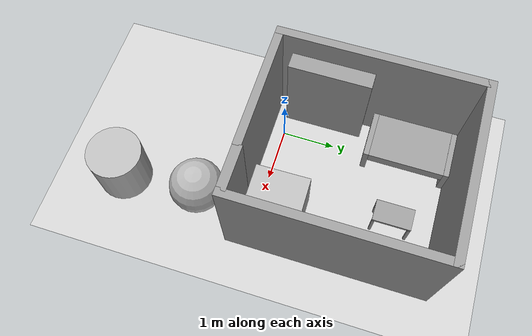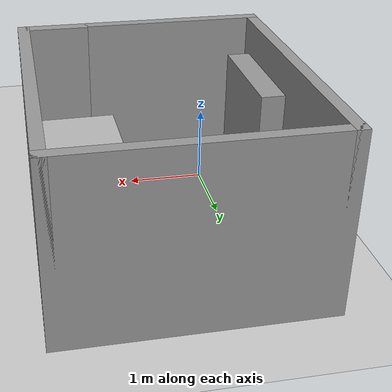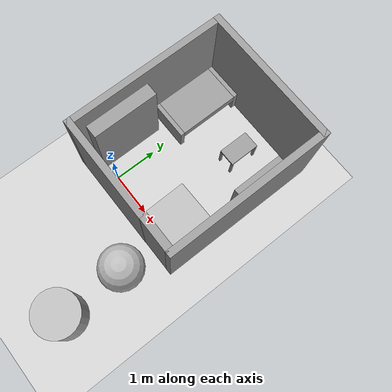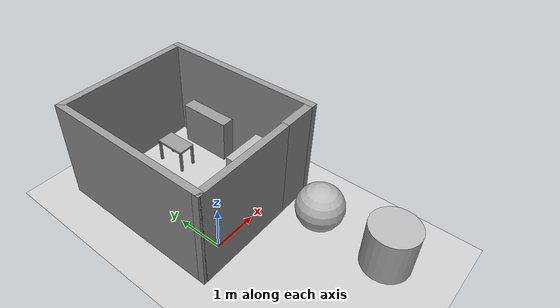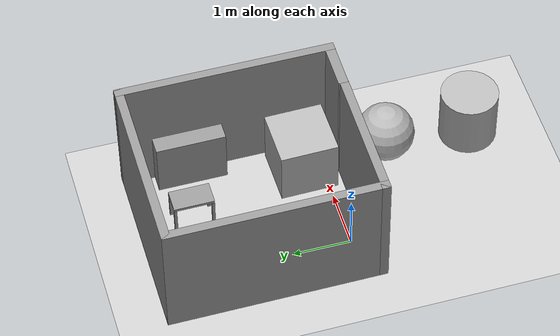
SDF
<sdf version="1.6">
 <world name="default">
  <scene><ambient>0.4 0.4 0.4 1</ambient><background>0.7 0.7 0.7 1</background><shadows>1</shadows></scene>
  <light name="sun" type="directional">
   <pose>0 0 10 0 -0 0</pose>
   <diffuse>0.8 0.8 0.8 1</diffuse>
   <specular>0.1 0.1 0.1 1</specular>
   <attenuation>
    <range>1000</range>
    <constant>0.9</constant>
    <linear>0.01</linear>
    <quadratic>0.001</quadratic>
   </attenuation>
   <direction>-0.5 0.5 -1</direction>
  </light>
  <model name="ground_plane">
   <static>1</static>
   <link name="link">
    <collision name="collision">
     <geometry><plane><normal>0 0 1</normal><size>100 100</size></plane></geometry>
     <surface><friction><ode><mu>100</mu><mu2>50</mu2></ode></friction></surface>
    </collision>
    <visual name="visual">
     <cast_shadows>0</cast_shadows>
     <geometry><plane><normal>0 0 1</normal><size>100 100</size></plane></geometry>
     <material>
      <script><uri>file://media/materials/scripts/gazebo.material</uri><name>Gazebo/Grey</name></script>
     </material>
    </visual>
   </link>
  </model>
  <physics name="default_physics" default="0" type="ode">
   <real_time_update_rate>1000</real_time_update_rate>
   <max_step_size>0.001</max_step_size>
   <real_time_factor>1</real_time_factor>
   <ode>
    <solver>
     <type>quick</type>
     <iters>150</iters>
     <precon_iters>0</precon_iters>
     <sor>1.4</sor>
     <use_dynamic_moi_rescaling>1</use_dynamic_moi_rescaling>
    </solver>
    <constraints>
     <cfm>1e-05</cfm>
     <erp>0.2</erp>
     <contact_max_correcting_vel>2000</contact_max_correcting_vel>
     <contact_surface_layer>0.01</contact_surface_layer>
    </constraints>
   </ode>
  </physics>
  <gravity>0 0 -9.8</gravity>
  <magnetic_field>6e-06 2.3e-05 -4.2e-05</magnetic_field>
  <atmosphere type="adiabatic"/>
  <spherical_coordinates>
   <surface_model>EARTH_WGS84</surface_model>
   <latitude_deg>0</latitude_deg>
   <longitude_deg>0</longitude_deg>
   <elevation>0</elevation>
   <heading_deg>0</heading_deg>
  </spherical_coordinates>
  <model name="bedroom_0">
   <pose>0.80187 1.47809 0 0 -0 0</pose>
   <link name="Door_1">
    <collision name="Door_1_Collision">
     <geometry><box><size>0.8 0.17 2.25</size></box></geometry>
     <pose>0 0 1.125 0 -0 0</pose>
    </collision>
    <visual name="Door_1_Visual">
     <pose>0 0 1.125 0 -0 0</pose>
     <geometry><box><size>0.8 0.17 2.25</size></box></geometry>
     <material>
      <script><uri>file://media/materials/scripts/gazebo.material</uri><name>Gazebo/Grey</name></script>
     </material>
    </visual>
    <pose>1.10897 -1.78722 0 0 -0 3.13854</pose>
   </link>
   <link name="Wall_17">
    <collision name="Wall_17_Collision">
     <geometry><box><size>3.234 0.15 2.25</size></box></geometry>
     <pose>0 0 1.125 0 -0 0</pose>
    </collision>
    <visual name="Wall_17_Visual">
     <pose>0 0 1.125 0 -0 0</pose>
     <geometry><box><size>3.234 0.15 2.25</size></box></geometry>
     <material>
      <script><uri>file://media/materials/scripts/gazebo.material</uri><name>Gazebo/Grey</name></script>
      <ambient>1 1 1 1</ambient>
     </material>
    </visual>
    <pose>0 1.8 0 0 -0 0</pose>
   </link>
   <link name="Wall_18">
    <collision name="Wall_18_Collision">
     <geometry><box><size>3.75 0.15 2.25</size></box></geometry>
     <pose>0 0 1.125 0 -0 0</pose>
    </collision>
    <visual name="Wall_18_Visual">
     <pose>0 0 1.125 0 -0 0</pose>
     <geometry><box><size>3.75 0.15 2.25</size></box></geometry>
     <material>
      <script><uri>file://media/materials/scripts/gazebo.material</uri><name>Gazebo/Grey</name></script>
      <ambient>1 1 1 1</ambient>
     </material>
    </visual>
    <pose>1.542 0 0 0 0 -1.5708</pose>
   </link>
   <link name="Wall_20">
    <collision name="Wall_20_Collision">
     <geometry><box><size>3.75 0.15 2.25</size></box></geometry>
     <pose>0 0 1.125 0 -0 0</pose>
    </collision>
    <visual name="Wall_20_Visual">
     <pose>0 0 1.125 0 -0 0</pose>
     <geometry><box><size>3.75 0.15 2.25</size></box></geometry>
     <material>
      <script><uri>file://media/materials/scripts/gazebo.material</uri><name>Gazebo/Grey</name></script>
      <ambient>1 1 1 1</ambient>
     </material>
    </visual>
    <pose>-1.542 0 0 0 -0 1.5708</pose>
   </link>
   <link name="Wall_22">
    <collision name="Wall_22_Collision">
     <geometry><box><size>2.35 0.15 2.25</size></box></geometry>
     <pose>0 0 1.125 0 -0 0</pose>
    </collision>
    <visual name="Wall_22_Visual">
     <pose>0 0 1.125 0 -0 0</pose>
     <geometry><box><size>2.35 0.15 2.25</size></box></geometry>
     <material>
      <script><uri>file://media/materials/scripts/gazebo.material</uri><name>Gazebo/Grey</name></script>
      <ambient>1 1 1 1</ambient>
     </material>
    </visual>
    <pose>-0.442 -1.8 0 0 -0 0</pose>
   </link>
   <static>1</static>
  </model>
  <model name="wardrobe">
   <link name="link">
    <pose>0.459939 -4.32407 1 0 -0 0</pose>
    <inertial>
     <mass>1</mass>
     <inertia>
      <ixx>0.166667</ixx>
      <ixy>0</ixy>
      <ixz>0</ixz>
      <iyy>0.166667</iyy>
      <iyz>0</iyz>
      <izz>0.166667</izz>
     </inertia>
    </inertial>
    <visual name="visual">
     <geometry><box><size>0.3 1.5 1.8</size></box></geometry>
     <material>
      <script><name>Gazebo/Grey</name><uri>file://media/materials/scripts/gazebo.material</uri></script>
      <ambient>0.3 0.3 0.3 1</ambient>
      <diffuse>0.7 0.7 0.7 1</diffuse>
      <specular>0.01 0.01 0.01 1</specular>
      <emissive>0 0 0 1</emissive>
      <shader type="vertex"><normal_map>__default__</normal_map></shader>
     </material>
    </visual>
    <collision name="collision">
     <geometry><box><size>0.3 1.5 1.8</size></box></geometry>
     <surface>
      <friction>
       <ode><mu>1</mu><mu2>1</mu2><fdir1>0 0 0</fdir1><slip1>0</slip1><slip2>0</slip2></ode>
       <torsional>
        <coefficient>1</coefficient>
        <patch_radius>0</patch_radius>
        <surface_radius>0</surface_radius>
        <use_patch_radius>1</use_patch_radius>
        <ode><slip>0</slip></ode>
       </torsional>
      </friction>
      <bounce><restitution_coefficient>0</restitution_coefficient><threshold>1e+06</threshold></bounce>
      <contact>
       <collide_without_contact>0</collide_without_contact>
       <collide_without_contact_bitmask>1</collide_without_contact_bitmask>
       <collide_bitmask>1</collide_bitmask>
       <ode>
        <soft_cfm>0</soft_cfm>
        <soft_erp>0.2</soft_erp>
        <kp>1e+13</kp>
        <kd>1</kd>
        <max_vel>0.01</max_vel>
        <min_depth>0</min_depth>
       </ode>
       <bullet>
        <split_impulse>1</split_impulse>
        <split_impulse_penetration_threshold>-0.01</split_impulse_penetration_threshold>
        <soft_cfm>0</soft_cfm>
        <soft_erp>0.2</soft_erp>
        <kp>1e+13</kp>
        <kd>1</kd>
       </bullet>
      </contact>
     </surface>
    </collision>
   </link>
   <static>1</static>
   <pose>-0.977293 5.00835 -0.098838 0 -0 0</pose>
  </model>
  <model name="mini_wardrobe">
   <link name="link">
    <inertial>
     <mass>1</mass>
     <inertia>
      <ixx>0.166667</ixx>
      <ixy>0</ixy>
      <ixz>0</ixz>
      <iyy>0.166667</iyy>
      <iyz>0</iyz>
      <izz>0.166667</izz>
     </inertia>
    </inertial>
    <visual name="visual">
     <geometry><box><size>0.3 1.2 1</size></box></geometry>
     <material>
      <script><name>Gazebo/Grey</name><uri>file://media/materials/scripts/gazebo.material</uri></script>
      <ambient>0.3 0.3 0.3 1</ambient>
      <diffuse>0.7 0.7 0.7 1</diffuse>
      <specular>0.01 0.01 0.01 1</specular>
      <emissive>0 0 0 1</emissive>
      <shader type="vertex"><normal_map>__default__</normal_map></shader>
     </material>
    </visual>
    <collision name="collision">
     <geometry><box><size>0.3 1.2 1</size></box></geometry>
     <surface>
      <friction>
       <ode><mu>1</mu><mu2>1</mu2><fdir1>0 0 0</fdir1><slip1>0</slip1><slip2>0</slip2></ode>
       <torsional>
        <coefficient>1</coefficient>
        <patch_radius>0</patch_radius>
        <surface_radius>0</surface_radius>
        <use_patch_radius>1</use_patch_radius>
        <ode><slip>0</slip></ode>
       </torsional>
      </friction>
      <bounce><restitution_coefficient>0</restitution_coefficient><threshold>1e+06</threshold></bounce>
      <contact>
       <collide_without_contact>0</collide_without_contact>
       <collide_without_contact_bitmask>1</collide_without_contact_bitmask>
       <collide_bitmask>1</collide_bitmask>
       <ode>
        <soft_cfm>0</soft_cfm>
        <soft_erp>0.2</soft_erp>
        <kp>1e+13</kp>
        <kd>1</kd>
        <max_vel>0.01</max_vel>
        <min_depth>0</min_depth>
       </ode>
       <bullet>
        <split_impulse>1</split_impulse>
        <split_impulse_penetration_threshold>-0.01</split_impulse_penetration_threshold>
        <soft_cfm>0</soft_cfm>
        <soft_erp>0.2</soft_erp>
        <kp>1e+13</kp>
        <kd>1</kd>
       </bullet>
      </contact>
     </surface>
    </collision>
   </link>
   <static>1</static>
   <pose>2.11999 2.20132 0.501685 0 -0 0</pose>
  </model>
  <model name="childrens_table">
   <link name="link_4">
    <pose>-0.173165 -0.324664 -0.054925 0 -0 0</pose>
    <inertial>
     <mass>1</mass>
     <inertia>
      <ixx>0.166667</ixx>
      <ixy>0</ixy>
      <ixz>0</ixz>
      <iyy>0.166667</iyy>
      <iyz>0</iyz>
      <izz>0.166667</izz>
     </inertia>
    </inertial>
    <visual name="visual">
     <geometry><box><size>0.05 0.05 0.5</size></box></geometry>
     <material>
      <lighting>1</lighting>
      <script><uri>file://media/materials/scripts/gazebo.material</uri><name>Gazebo/Grey</name></script>
      <ambient>0.3 0.3 0.3 1</ambient>
      <diffuse>0.7 0.7 0.7 1</diffuse>
      <specular>0.01 0.01 0.01 1</specular>
      <emissive>0 0 0 1</emissive>
      <shader type="vertex"><normal_map>__default__</normal_map></shader>
     </material>
    </visual>
    <collision name="collision">
     <geometry><box><size>0.05 0.05 0.5</size></box></geometry>
     <surface>
      <friction>
       <ode><mu>1</mu><mu2>1</mu2><fdir1>0 0 0</fdir1><slip1>0</slip1><slip2>0</slip2></ode>
       <torsional>
        <coefficient>1</coefficient>
        <patch_radius>0</patch_radius>
        <surface_radius>0</surface_radius>
        <use_patch_radius>1</use_patch_radius>
        <ode><slip>0</slip></ode>
       </torsional>
      </friction>
      <bounce><restitution_coefficient>0</restitution_coefficient><threshold>1e+06</threshold></bounce>
      <contact>
       <collide_without_contact>0</collide_without_contact>
       <collide_without_contact_bitmask>1</collide_without_contact_bitmask>
       <collide_bitmask>1</collide_bitmask>
       <ode>
        <soft_cfm>0</soft_cfm>
        <soft_erp>0.2</soft_erp>
        <kp>1e+13</kp>
        <kd>1</kd>
        <max_vel>0.01</max_vel>
        <min_depth>0</min_depth>
       </ode>
       <bullet>
        <split_impulse>1</split_impulse>
        <split_impulse_penetration_threshold>-0.01</split_impulse_penetration_threshold>
        <soft_cfm>0</soft_cfm>
        <soft_erp>0.2</soft_erp>
        <kp>1e+13</kp>
        <kd>1</kd>
       </bullet>
      </contact>
     </surface>
    </collision>
   </link>
   <link name="link_4_clone">
    <pose>0.173934 -0.324682 -0.054925 0 -0 0</pose>
    <inertial>
     <mass>1</mass>
     <inertia>
      <ixx>0.166667</ixx>
      <ixy>0</ixy>
      <ixz>0</ixz>
      <iyy>0.166667</iyy>
      <iyz>0</iyz>
      <izz>0.166667</izz>
     </inertia>
    </inertial>
    <visual name="visual">
     <geometry><box><size>0.05 0.05 0.5</size></box></geometry>
     <material>
      <lighting>1</lighting>
      <script><uri>file://media/materials/scripts/gazebo.material</uri><name>Gazebo/Grey</name></script>
      <ambient>0.3 0.3 0.3 1</ambient>
      <diffuse>0.7 0.7 0.7 1</diffuse>
      <specular>0.01 0.01 0.01 1</specular>
      <emissive>0 0 0 1</emissive>
      <shader type="vertex"><normal_map>__default__</normal_map></shader>
     </material>
    </visual>
    <collision name="collision">
     <geometry><box><size>0.05 0.05 0.5</size></box></geometry>
     <surface>
      <friction>
       <ode><mu>1</mu><mu2>1</mu2><fdir1>0 0 0</fdir1><slip1>0</slip1><slip2>0</slip2></ode>
       <torsional>
        <coefficient>1</coefficient>
        <patch_radius>0</patch_radius>
        <surface_radius>0</surface_radius>
        <use_patch_radius>1</use_patch_radius>
        <ode><slip>0</slip></ode>
       </torsional>
      </friction>
      <bounce><restitution_coefficient>0</restitution_coefficient><threshold>1e+06</threshold></bounce>
      <contact>
       <collide_without_contact>0</collide_without_contact>
       <collide_without_contact_bitmask>1</collide_without_contact_bitmask>
       <collide_bitmask>1</collide_bitmask>
       <ode>
        <soft_cfm>0</soft_cfm>
        <soft_erp>0.2</soft_erp>
        <kp>1e+13</kp>
        <kd>1</kd>
        <max_vel>0.01</max_vel>
        <min_depth>0</min_depth>
       </ode>
       <bullet>
        <split_impulse>1</split_impulse>
        <split_impulse_penetration_threshold>-0.01</split_impulse_penetration_threshold>
        <soft_cfm>0</soft_cfm>
        <soft_erp>0.2</soft_erp>
        <kp>1e+13</kp>
        <kd>1</kd>
       </bullet>
      </contact>
     </surface>
    </collision>
   </link>
   <link name="link_4_clone_0">
    <pose>0.174748 0.324455 -0.054925 0 -0 0</pose>
    <inertial>
     <mass>1</mass>
     <inertia>
      <ixx>0.166667</ixx>
      <ixy>0</ixy>
      <ixz>0</ixz>
      <iyy>0.166667</iyy>
      <iyz>0</iyz>
      <izz>0.166667</izz>
     </inertia>
    </inertial>
    <visual name="visual">
     <geometry><box><size>0.05 0.05 0.5</size></box></geometry>
     <material>
      <lighting>1</lighting>
      <script><uri>file://media/materials/scripts/gazebo.material</uri><name>Gazebo/Grey</name></script>
      <ambient>0.3 0.3 0.3 1</ambient>
      <diffuse>0.7 0.7 0.7 1</diffuse>
      <specular>0.01 0.01 0.01 1</specular>
      <emissive>0 0 0 1</emissive>
      <shader type="vertex"><normal_map>__default__</normal_map></shader>
     </material>
    </visual>
    <collision name="collision">
     <geometry><box><size>0.05 0.05 0.5</size></box></geometry>
     <surface>
      <friction>
       <ode><mu>1</mu><mu2>1</mu2><fdir1>0 0 0</fdir1><slip1>0</slip1><slip2>0</slip2></ode>
       <torsional>
        <coefficient>1</coefficient>
        <patch_radius>0</patch_radius>
        <surface_radius>0</surface_radius>
        <use_patch_radius>1</use_patch_radius>
        <ode><slip>0</slip></ode>
       </torsional>
      </friction>
      <bounce><restitution_coefficient>0</restitution_coefficient><threshold>1e+06</threshold></bounce>
      <contact>
       <collide_without_contact>0</collide_without_contact>
       <collide_without_contact_bitmask>1</collide_without_contact_bitmask>
       <collide_bitmask>1</collide_bitmask>
       <ode>
        <soft_cfm>0</soft_cfm>
        <soft_erp>0.2</soft_erp>
        <kp>1e+13</kp>
        <kd>1</kd>
        <max_vel>0.01</max_vel>
        <min_depth>0</min_depth>
       </ode>
       <bullet>
        <split_impulse>1</split_impulse>
        <split_impulse_penetration_threshold>-0.01</split_impulse_penetration_threshold>
        <soft_cfm>0</soft_cfm>
        <soft_erp>0.2</soft_erp>
        <kp>1e+13</kp>
        <kd>1</kd>
       </bullet>
      </contact>
     </surface>
    </collision>
   </link>
   <link name="link_4_clone_1">
    <pose>-0.175844 0.325674 -0.054925 0 -0 0</pose>
    <inertial>
     <mass>1</mass>
     <inertia>
      <ixx>0.166667</ixx>
      <ixy>0</ixy>
      <ixz>0</ixz>
      <iyy>0.166667</iyy>
      <iyz>0</iyz>
      <izz>0.166667</izz>
     </inertia>
    </inertial>
    <visual name="visual">
     <geometry><box><size>0.05 0.05 0.5</size></box></geometry>
     <material>
      <lighting>1</lighting>
      <script><uri>file://media/materials/scripts/gazebo.material</uri><name>Gazebo/Grey</name></script>
      <ambient>0.3 0.3 0.3 1</ambient>
      <diffuse>0.7 0.7 0.7 1</diffuse>
      <specular>0.01 0.01 0.01 1</specular>
      <emissive>0 0 0 1</emissive>
      <shader type="vertex"><normal_map>__default__</normal_map></shader>
     </material>
    </visual>
    <collision name="collision">
     <geometry><box><size>0.05 0.05 0.5</size></box></geometry>
     <surface>
      <friction>
       <ode><mu>1</mu><mu2>1</mu2><fdir1>0 0 0</fdir1><slip1>0</slip1><slip2>0</slip2></ode>
       <torsional>
        <coefficient>1</coefficient>
        <patch_radius>0</patch_radius>
        <surface_radius>0</surface_radius>
        <use_patch_radius>1</use_patch_radius>
        <ode><slip>0</slip></ode>
       </torsional>
      </friction>
      <bounce><restitution_coefficient>0</restitution_coefficient><threshold>1e+06</threshold></bounce>
      <contact>
       <collide_without_contact>0</collide_without_contact>
       <collide_without_contact_bitmask>1</collide_without_contact_bitmask>
       <collide_bitmask>1</collide_bitmask>
       <ode>
        <soft_cfm>0</soft_cfm>
        <soft_erp>0.2</soft_erp>
        <kp>1e+13</kp>
        <kd>1</kd>
        <max_vel>0.01</max_vel>
        <min_depth>0</min_depth>
       </ode>
       <bullet>
        <split_impulse>1</split_impulse>
        <split_impulse_penetration_threshold>-0.01</split_impulse_penetration_threshold>
        <soft_cfm>0</soft_cfm>
        <soft_erp>0.2</soft_erp>
        <kp>1e+13</kp>
        <kd>1</kd>
       </bullet>
      </contact>
     </surface>
    </collision>
   </link>
   <link name="link_5">
    <pose>0.000316 0.000143 0.219699 0 -0 0</pose>
    <inertial>
     <mass>1</mass>
     <inertia>
      <ixx>0.166667</ixx>
      <ixy>0</ixy>
      <ixz>0</ixz>
      <iyy>0.166667</iyy>
      <iyz>0</iyz>
      <izz>0.166667</izz>
     </inertia>
    </inertial>
    <visual name="visual">
     <geometry><box><size>0.4 0.7 0.05</size></box></geometry>
     <material>
      <lighting>1</lighting>
      <script><uri>file://media/materials/scripts/gazebo.material</uri><name>Gazebo/Grey</name></script>
      <ambient>0.3 0.3 0.3 1</ambient>
      <diffuse>0.7 0.7 0.7 1</diffuse>
      <specular>0.01 0.01 0.01 1</specular>
      <emissive>0 0 0 1</emissive>
      <shader type="vertex"><normal_map>__default__</normal_map></shader>
     </material>
    </visual>
    <collision name="collision">
     <geometry><box><size>0.4 0.7 0.05</size></box></geometry>
     <surface>
      <friction>
       <ode><mu>1</mu><mu2>1</mu2><fdir1>0 0 0</fdir1><slip1>0</slip1><slip2>0</slip2></ode>
       <torsional>
        <coefficient>1</coefficient>
        <patch_radius>0</patch_radius>
        <surface_radius>0</surface_radius>
        <use_patch_radius>1</use_patch_radius>
        <ode><slip>0</slip></ode>
       </torsional>
      </friction>
      <bounce><restitution_coefficient>0</restitution_coefficient><threshold>1e+06</threshold></bounce>
      <contact>
       <collide_without_contact>0</collide_without_contact>
       <collide_without_contact_bitmask>1</collide_without_contact_bitmask>
       <collide_bitmask>1</collide_bitmask>
       <ode>
        <soft_cfm>0</soft_cfm>
        <soft_erp>0.2</soft_erp>
        <kp>1e+13</kp>
        <kd>1</kd>
        <max_vel>0.01</max_vel>
        <min_depth>0</min_depth>
       </ode>
       <bullet>
        <split_impulse>1</split_impulse>
        <split_impulse_penetration_threshold>-0.01</split_impulse_penetration_threshold>
        <soft_cfm>0</soft_cfm>
        <soft_erp>0.2</soft_erp>
        <kp>1e+13</kp>
        <kd>1</kd>
       </bullet>
      </contact>
     </surface>
    </collision>
   </link>
   <static>1</static>
   <pose>1.24256 2.4044 0.306 0 -0 0</pose>
  </model>
  <model name="bed">
   <link name="link_3">
    <pose>-0.475135 1.77318 0.174145 0 -0 0</pose>
    <inertial>
     <mass>1</mass>
     <inertia>
      <ixx>0.166667</ixx>
      <ixy>0</ixy>
      <ixz>0</ixz>
      <iyy>0.166667</iyy>
      <iyz>0</iyz>
      <izz>0.166667</izz>
     </inertia>
    </inertial>
    <visual name="visual">
     <geometry><box><size>0.9 1.4 0.2</size></box></geometry>
     <material>
      <lighting>1</lighting>
      <script><uri>file://media/materials/scripts/gazebo.material</uri><name>Gazebo/Grey</name></script>
      <ambient>0.3 0.3 0.3 1</ambient>
      <diffuse>0.7 0.7 0.7 1</diffuse>
      <specular>0.01 0.01 0.01 1</specular>
      <emissive>0 0 0 1</emissive>
      <shader type="vertex"><normal_map>__default__</normal_map></shader>
     </material>
    </visual>
    <collision name="collision">
     <geometry><box><size>0.9 1.4 0.2</size></box></geometry>
     <surface>
      <friction>
       <ode><mu>1</mu><mu2>1</mu2><fdir1>0 0 0</fdir1><slip1>0</slip1><slip2>0</slip2></ode>
       <torsional>
        <coefficient>1</coefficient>
        <patch_radius>0</patch_radius>
        <surface_radius>0</surface_radius>
        <use_patch_radius>1</use_patch_radius>
        <ode><slip>0</slip></ode>
       </torsional>
      </friction>
      <bounce><restitution_coefficient>0</restitution_coefficient><threshold>1e+06</threshold></bounce>
      <contact>
       <collide_without_contact>0</collide_without_contact>
       <collide_without_contact_bitmask>1</collide_without_contact_bitmask>
       <collide_bitmask>1</collide_bitmask>
       <ode>
        <soft_cfm>0</soft_cfm>
        <soft_erp>0.2</soft_erp>
        <kp>1e+13</kp>
        <kd>1</kd>
        <max_vel>0.01</max_vel>
        <min_depth>0</min_depth>
       </ode>
       <bullet>
        <split_impulse>1</split_impulse>
        <split_impulse_penetration_threshold>-0.01</split_impulse_penetration_threshold>
        <soft_cfm>0</soft_cfm>
        <soft_erp>0.2</soft_erp>
        <kp>1e+13</kp>
        <kd>1</kd>
       </bullet>
      </contact>
     </surface>
    </collision>
   </link>
   <link name="link_clone">
    <pose>-0.475077 1.0236 0 0 -0 0</pose>
    <inertial>
     <mass>1.0352</mass>
     <inertia>
      <ixx>0.172534</ixx>
      <ixy>0</ixy>
      <ixz>0</ixz>
      <iyy>0.178714</iyy>
      <iyz>0</iyz>
      <izz>0.178714</izz>
     </inertia>
    </inertial>
    <visual name="visual">
     <geometry><box><size>0.9 0.1 0.55</size></box></geometry>
     <material>
      <script><name>Gazebo/Grey</name><uri>file://media/materials/scripts/gazebo.material</uri></script>
      <ambient>0.3 0.3 0.3 1</ambient>
      <diffuse>0.7 0.7 0.7 1</diffuse>
      <specular>0.01 0.01 0.01 1</specular>
      <emissive>0 0 0 1</emissive>
      <shader type="vertex"><normal_map>__default__</normal_map></shader>
     </material>
    </visual>
    <collision name="collision">
     <geometry><box><size>0.9 0.1 0.55</size></box></geometry>
     <surface>
      <friction>
       <ode><mu>1</mu><mu2>1</mu2><fdir1>0 0 0</fdir1><slip1>0</slip1><slip2>0</slip2></ode>
       <torsional>
        <coefficient>1</coefficient>
        <patch_radius>0</patch_radius>
        <surface_radius>0</surface_radius>
        <use_patch_radius>1</use_patch_radius>
        <ode><slip>0</slip></ode>
       </torsional>
      </friction>
      <bounce><restitution_coefficient>0</restitution_coefficient><threshold>1e+06</threshold></bounce>
      <contact>
       <collide_without_contact>0</collide_without_contact>
       <collide_without_contact_bitmask>1</collide_without_contact_bitmask>
       <collide_bitmask>1</collide_bitmask>
       <ode>
        <soft_cfm>0</soft_cfm>
        <soft_erp>0.2</soft_erp>
        <kp>1e+13</kp>
        <kd>1</kd>
        <max_vel>0.01</max_vel>
        <min_depth>0</min_depth>
       </ode>
       <bullet>
        <split_impulse>1</split_impulse>
        <split_impulse_penetration_threshold>-0.01</split_impulse_penetration_threshold>
        <soft_cfm>0</soft_cfm>
        <soft_erp>0.2</soft_erp>
        <kp>1e+13</kp>
        <kd>1</kd>
       </bullet>
      </contact>
     </surface>
    </collision>
   </link>
   <link name="link_clone_clone">
    <pose>-0.475223 2.52343 0 0 -0 0</pose>
    <inertial>
     <mass>1.0352</mass>
     <inertia>
      <ixx>0.172534</ixx>
      <ixy>0</ixy>
      <ixz>0</ixz>
      <iyy>0.178714</iyy>
      <iyz>0</iyz>
      <izz>0.178714</izz>
     </inertia>
    </inertial>
    <visual name="visual">
     <geometry><box><size>0.9 0.1 0.55</size></box></geometry>
     <material>
      <script><name>Gazebo/Grey</name><uri>file://media/materials/scripts/gazebo.material</uri></script>
      <ambient>0.3 0.3 0.3 1</ambient>
      <diffuse>0.7 0.7 0.7 1</diffuse>
      <specular>0.01 0.01 0.01 1</specular>
      <emissive>0 0 0 1</emissive>
      <shader type="vertex"><normal_map>__default__</normal_map></shader>
     </material>
    </visual>
    <collision name="collision">
     <geometry><box><size>0.9 0.1 0.55</size></box></geometry>
     <surface>
      <friction>
       <ode><mu>1</mu><mu2>1</mu2><fdir1>0 0 0</fdir1><slip1>0</slip1><slip2>0</slip2></ode>
       <torsional>
        <coefficient>1</coefficient>
        <patch_radius>0</patch_radius>
        <surface_radius>0</surface_radius>
        <use_patch_radius>1</use_patch_radius>
        <ode><slip>0</slip></ode>
       </torsional>
      </friction>
      <bounce><restitution_coefficient>0</restitution_coefficient><threshold>1e+06</threshold></bounce>
      <contact>
       <collide_without_contact>0</collide_without_contact>
       <collide_without_contact_bitmask>1</collide_without_contact_bitmask>
       <collide_bitmask>1</collide_bitmask>
       <ode>
        <soft_cfm>0</soft_cfm>
        <soft_erp>0.2</soft_erp>
        <kp>1e+13</kp>
        <kd>1</kd>
        <max_vel>0.01</max_vel>
        <min_depth>0</min_depth>
       </ode>
       <bullet>
        <split_impulse>1</split_impulse>
        <split_impulse_penetration_threshold>-0.01</split_impulse_penetration_threshold>
        <soft_cfm>0</soft_cfm>
        <soft_erp>0.2</soft_erp>
        <kp>1e+13</kp>
        <kd>1</kd>
       </bullet>
      </contact>
     </surface>
    </collision>
   </link>
   <joint name="link_3_JOINT_0" type="universal">
    <parent>link_clone</parent>
    <child>link_3</child>
    <axis>
     <xyz>1 0 0</xyz>
     <use_parent_model_frame>0</use_parent_model_frame>
     <limit>
      <lower>-1.79769e+308</lower>
      <upper>1.79769e+308</upper>
      <effort>-1</effort>
      <velocity>-1</velocity>
     </limit>
     <dynamics>
      <spring_reference>0</spring_reference>
      <spring_stiffness>0</spring_stiffness>
      <damping>0</damping>
      <friction>0</friction>
     </dynamics>
    </axis>
    <axis2>
     <xyz>0 1 0</xyz>
     <use_parent_model_frame>0</use_parent_model_frame>
     <dynamics>
      <spring_reference>0</spring_reference>
      <spring_stiffness>0</spring_stiffness>
      <damping>0</damping>
      <friction>0</friction>
     </dynamics>
     <limit>
      <lower>-1.79769e+308</lower>
      <upper>1.79769e+308</upper>
      <effort>-1</effort>
      <velocity>-1</velocity>
     </limit>
    </axis2>
    <physics>
     <ode><limit><cfm>0</cfm><erp>0.2</erp></limit><suspension><cfm>0</cfm><erp>0.2</erp></suspension></ode>
    </physics>
   </joint>
   <joint name="link_3_JOINT_1" type="revolute">
    <parent>link_clone_clone</parent>
    <child>link_3</child>
    <axis>
     <xyz>1 0 0</xyz>
     <use_parent_model_frame>0</use_parent_model_frame>
     <limit>
      <lower>-1.79769e+308</lower>
      <upper>1.79769e+308</upper>
      <effort>-1</effort>
      <velocity>-1</velocity>
     </limit>
     <dynamics>
      <spring_reference>0</spring_reference>
      <spring_stiffness>0</spring_stiffness>
      <damping>0</damping>
      <friction>0</friction>
     </dynamics>
    </axis>
    <physics>
     <ode><limit><cfm>0</cfm><erp>0.2</erp></limit><suspension><cfm>0</cfm><erp>0.2</erp></suspension></ode>
    </physics>
   </joint>
   <static>1</static>
   <pose>0.26254 0.62567 0.276232 0 -0 0</pose>
  </model>
  <model name="textured_shapes">
   <pose>1.73351 -1.14005 0.5 0 0 -3.12749</pose>
   <link name="box">
    <pose>0 -1.5 0 0 -0 0</pose>
    <collision name="collision"><geometry><box><size>1 1 1</size></box></geometry></collision>
    <visual name="visual">
     <geometry><box><size>1 1 1</size></box></geometry>
     <material>
      <script>
       <uri>model://textured_shapes/materials/scripts</uri>
       <uri>model://textured_shapes/materials/textures</uri>
       <name>TexturedShape/Squares</name>
      </script>
     </material>
    </visual>
    <inertial>
     <inertia><ixx>1</ixx><ixy>0</ixy><ixz>0</ixz><iyy>1</iyy><iyz>0</iyz><izz>1</izz></inertia>
     <mass>1</mass>
    </inertial>
   </link>
   <link name="sphere">
    <collision name="collision"><geometry><sphere><radius>0.5</radius></sphere></geometry></collision>
    <visual name="visual">
     <geometry><sphere><radius>0.5</radius></sphere></geometry>
     <material>
      <script>
       <uri>model://textured_shapes/materials/scripts</uri>
       <uri>model://textured_shapes/materials/textures</uri>
       <name>TexturedShape/Squares</name>
      </script>
     </material>
    </visual>
    <inertial>
     <inertia><ixx>1</ixx><ixy>0</ixy><ixz>0</ixz><iyy>1</iyy><iyz>0</iyz><izz>1</izz></inertia>
     <mass>1</mass>
    </inertial>
   </link>
   <link name="cylinder">
    <pose>0 1.5 0 0 -0 0</pose>
    <collision name="collision">
     <geometry><cylinder><radius>0.5</radius><length>1</length></cylinder></geometry>
    </collision>
    <visual name="visual">
     <geometry><cylinder><radius>0.5</radius><length>1</length></cylinder></geometry>
     <material>
      <script>
       <uri>model://textured_shapes/materials/scripts</uri>
       <uri>model://textured_shapes/materials/textures</uri>
       <name>TexturedShape/Squares</name>
      </script>
     </material>
    </visual>
    <inertial>
     <inertia><ixx>1</ixx><ixy>0</ixy><ixz>0</ixz><iyy>1</iyy><iyz>0</iyz><izz>1</izz></inertia>
     <mass>1</mass>
    </inertial>
   </link>
  </model>
 </world>
</sdf>
